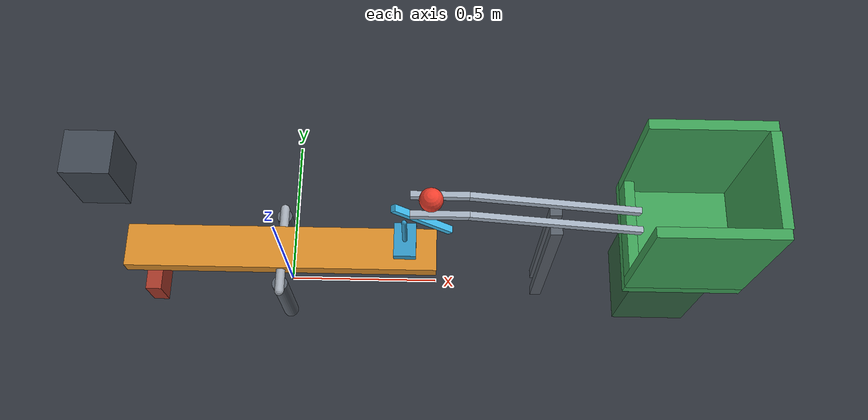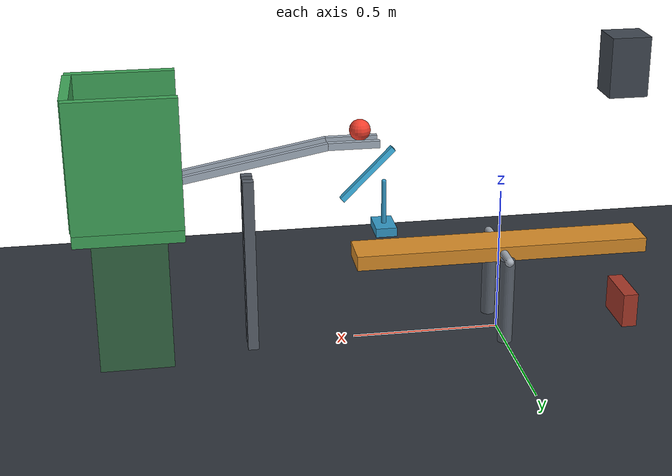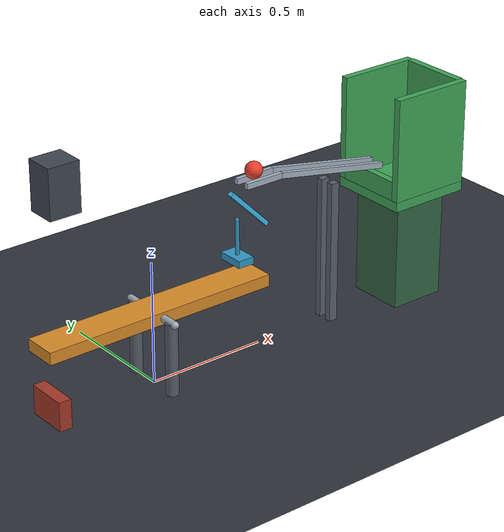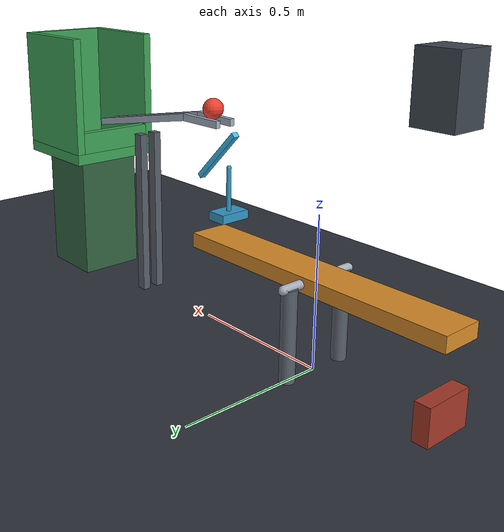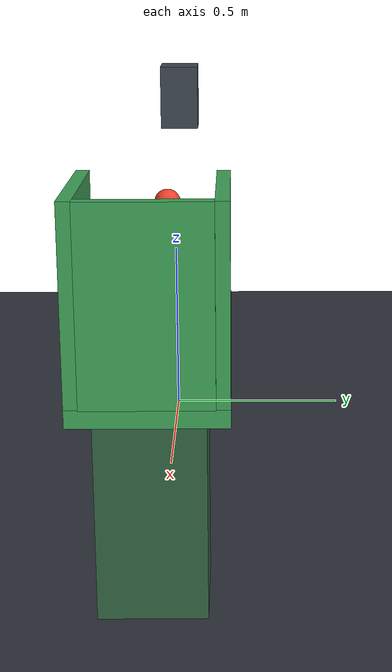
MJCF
<mujoco model="falling_weight_lever_lift_bridge_cup">
  <compiler angle="radian" autolimits="true"/>
  <option timestep="0.002" gravity="0 0 -9.81" integrator="implicitfast" solver="Newton" iterations="100" tolerance="1e-10"/>
  <size njmax="300" nconmax="100"/>

  <visual>
    <headlight ambient="0.4 0.4 0.4" diffuse="0.7 0.7 0.7" specular="0.2 0.2 0.2"/>
    <map znear="0.01" zfar="20"/>
  </visual>

  <worldbody>
    <light name="overhead" pos="0.3 -1 3" dir="0 0 -1" diffuse="0.8 0.8 0.8"/>
    <camera name="overview" pos="2.4 -3.2 1.9" xyaxes="0.84 0.55 0 -0.19 0.29 0.94"/>

    <geom name="floor" type="plane" size="4 3 0.1" rgba="0.18 0.20 0.23 1" friction="0.9 0.01 0.01" condim="6"/>

    <body name="lever_mount" pos="0 0 0">
      <geom name="lever_mount_near_post" type="cylinder" pos="0 -0.115 0.15" size="0.025 0.15" contype="0" conaffinity="0" rgba="0.35 0.38 0.42 1"/>
      <geom name="lever_mount_far_post" type="cylinder" pos="0 0.115 0.15" size="0.025 0.15" contype="0" conaffinity="0" rgba="0.35 0.38 0.42 1"/>
      <geom name="lever_mount_axle" type="capsule" fromto="0 -0.14 0.3 0 0.14 0.3" size="0.015" contype="0" conaffinity="0" rgba="0.65 0.68 0.72 1"/>
      <geom name="lever_mount_lower_stop" type="box" pos="-0.456 0 0.06" size="0.026 0.085 0.06" friction="0.8 0.005 0.001" solref="0.005 1" solimp="0.97 0.995 0.001" rgba="0.65 0.22 0.16 1"/>
    </body>

    <!-- The weight's bottom starts exactly 0.5 m above the lever's top. -->
    <body name="weight" pos="-0.4 0 0.925">
      <freejoint name="weight_free"/>
      <geom name="weight_block" type="box" size="0.065 0.06 0.1" mass="2" friction="0.8 0.005 0.001" solref="0.008 1" solimp="0.95 0.99 0.001" rgba="0.25 0.28 0.32 1"/>
    </body>

    <body name="lever" pos="0 0 0.3">
      <joint name="lever_hinge" type="hinge" axis="0 -1 0" range="0 0.32" damping="0.015" armature="0.002" solreflimit="0.005 1" solimplimit="0.97 0.995 0.001"/>
      <geom name="lever_beam" type="box" size="0.5 0.07 0.025" mass="0.6" friction="0.8 0.005 0.001" solref="0.006 1" solimp="0.96 0.995 0.001" rgba="0.85 0.55 0.16 1"/>
    </body>

    <!-- A 0.06 m initial gap separates the lever from the lift's underside. -->
    <body name="lift" pos="0.4 0 0.4">
      <joint name="lift_slide" type="slide" axis="0 0 1" range="0 0.24" damping="0.03" solreflimit="0.005 1" solimplimit="0.97 0.995 0.001"/>
      <geom name="lift_foot" type="box" size="0.035 0.055 0.015" mass="0.05" friction="0.8 0.005 0.001" solref="0.006 1" solimp="0.96 0.995 0.001" rgba="0.20 0.60 0.78 1"/>
      <geom name="lift_stem" type="capsule" fromto="0 0 0.015 0 0 0.16" size="0.008" mass="0.02" friction="0.1 0.001 0.001" rgba="0.20 0.60 0.78 1"/>
      <geom name="lift_striker" type="box" pos="0.055 0 0.19" quat="0.923879533 0 0.382683432 0" size="0.12 0.011 0.009" mass="0.05" friction="0.03 0.001 0.001" condim="6" solref="0.006 1" solimp="0.95 0.99 0.001" rgba="0.25 0.75 0.95 1"/>
    </body>

    <!-- The narrow striker travels between the rails. Its ball-contact travel
         is about 0.116 m; the stopped lever lifts the foot only about 0.085 m. -->
    <body name="ball" pos="0.48 0 0.743">
      <freejoint name="ball_free"/>
      <geom name="ball_sphere" type="sphere" size="0.035" mass="0.035" friction="0.05 0.001 0.001" condim="6" solref="0.008 1" solimp="0.95 0.99 0.001" rgba="0.95 0.25 0.18 1"/>
    </body>

    <body name="bridge" pos="0 0 0">
      <geom name="bridge_flat_near_rail" type="box" pos="0.505 -0.03 0.703" size="0.085 0.009 0.012" friction="0.8 0.002 0.0005" condim="6" solref="0.008 1" rgba="0.65 0.70 0.76 1"/>
      <geom name="bridge_flat_far_rail" type="box" pos="0.505 0.03 0.703" size="0.085 0.009 0.012" friction="0.8 0.002 0.0005" condim="6" solref="0.008 1" rgba="0.65 0.70 0.76 1"/>
      <geom name="bridge_downhill_near_rail" type="box" pos="0.842802 -0.03 0.655703" quat="0.995764 0 0.09194 0" size="0.259386 0.009 0.012" friction="0.8 0.002 0.0005" condim="6" solref="0.008 1" rgba="0.65 0.70 0.76 1"/>
      <geom name="bridge_downhill_far_rail" type="box" pos="0.842802 0.03 0.655703" quat="0.995764 0 0.09194 0" size="0.259386 0.009 0.012" friction="0.8 0.002 0.0005" condim="6" solref="0.008 1" rgba="0.65 0.70 0.76 1"/>
      <geom name="bridge_near_leg" type="box" pos="0.85 -0.03 0.30" size="0.018 0.014 0.30" rgba="0.35 0.38 0.42 1"/>
      <geom name="bridge_far_leg" type="box" pos="0.85 0.03 0.30" size="0.018 0.014 0.30" rgba="0.35 0.38 0.42 1"/>
    </body>

    <body name="cup" pos="0 0 0">
      <geom name="cup_base" type="box" pos="1.235 0 0.48" size="0.175 0.17 0.02" friction="1 0.02 0.02" condim="6" solref="0.015 1" solimp="0.95 0.99 0.001" rgba="0.25 0.65 0.35 1"/>
      <geom name="cup_near_wall" type="box" pos="1.235 -0.155 0.715" size="0.175 0.015 0.215" friction="1 0.02 0.02" condim="6" solref="0.015 1" rgba="0.25 0.65 0.35 1"/>
      <geom name="cup_far_wall" type="box" pos="1.235 0.155 0.715" size="0.175 0.015 0.215" friction="1 0.02 0.02" condim="6" solref="0.015 1" rgba="0.25 0.65 0.35 1"/>
      <geom name="cup_back_wall" type="box" pos="1.4 0 0.715" size="0.015 0.14 0.215" friction="1 0.02 0.02" condim="6" solref="0.015 1" rgba="0.25 0.65 0.35 1"/>
      <geom name="cup_entry_lip" type="box" pos="1.075 0 0.54" size="0.015 0.14 0.04" friction="1 0.02 0.02" condim="6" solref="0.015 1" rgba="0.25 0.65 0.35 1"/>
      <geom name="cup_pedestal" type="box" pos="1.235 0 0.23" size="0.12 0.12 0.23" rgba="0.20 0.40 0.26 1"/>
    </body>
  </worldbody>

  <keyframe>
    <key name="start" qpos="-0.4 0 0.925 1 0 0 0 0 0 0.48 0 0.743 1 0 0 0"/>
  </keyframe>
</mujoco>
